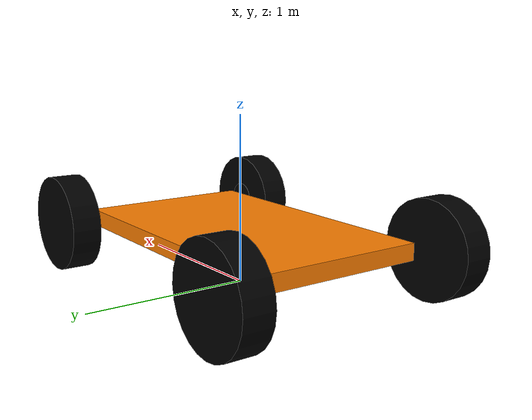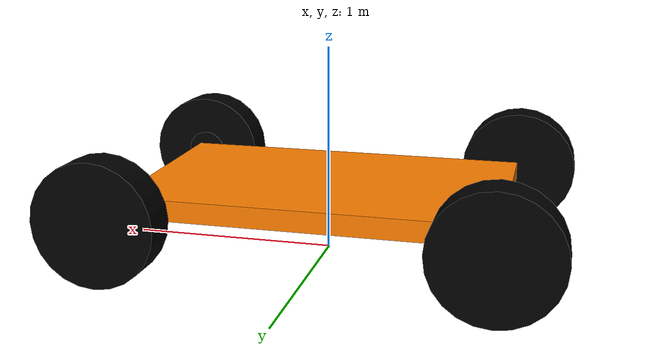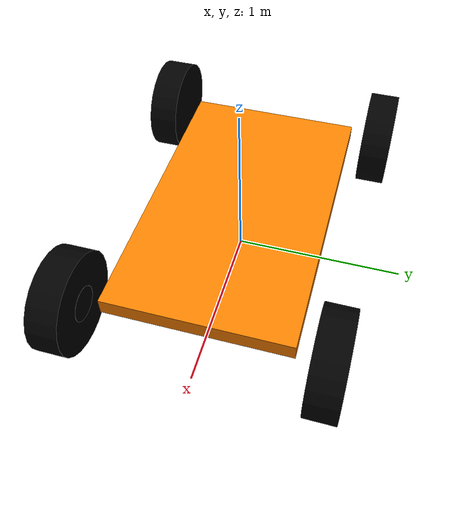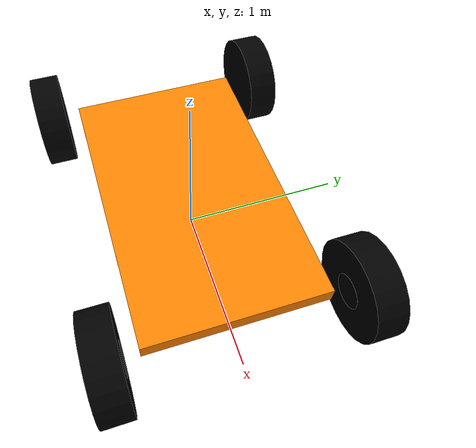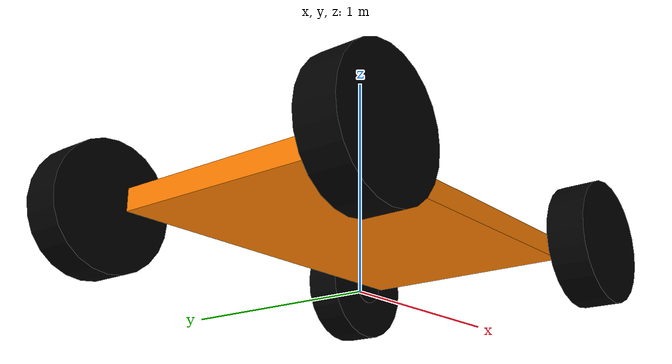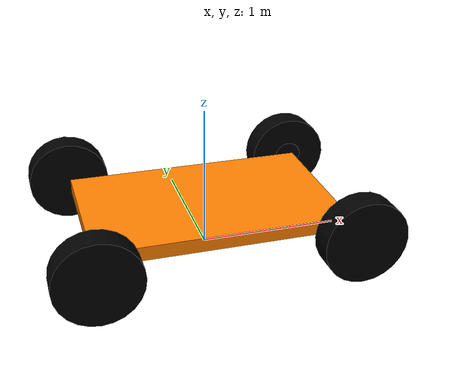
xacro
<?xml version="1.0"?>
<robot name="ackermann_vehicle"
    xmlns:xacro="http://www.ros.org/wiki/xacro">

    <!-- Materials -->
    <material name="black">
        <color rgba="0.0 0.0 0.0 1.0"/>
    </material>
    <material name="orange">
        <color rgba="1.0 0.5 0.0 1.0"/>
    </material>
    <material name="blue">
        <color rgba="0.0 0.0 0.8 1.0"/>
    </material>

    <!-- Vehicle Dimensions -->
    <xacro:property name="wheel_base_length" value="1.753"/>
    <xacro:property name="wheel_base_width" value="1.245"/>
    <xacro:property name="wheel_diameter" value="0.584"/>
    <xacro:property name="wheel_thickness" value="0.178"/>

    <!-- Macros -->
    <xacro:macro name="wheel" params="name radius width material caster_offset mass">
        <link name="${name}">
            <collision>
                <origin xyz="0 0 0" rpy="0 1.5708 1.5708" />
                <geometry>
                    <cylinder length="${width}" radius="${radius}"/>
                </geometry>
            </collision>
            <visual>
                <origin xyz="0 0 0" rpy="0 1.5708 1.5708" />
                <geometry>
                    <cylinder length="${width}" radius="${radius}"/>
                </geometry>
                <material name="black"/>
            </visual>
            <inertial>
                <origin xyz="0 0 0" rpy="0 1.5708 1.5708" />
                <mass value="0.2"/>
                <xacro:cylinder_inertia m="${mass}" r="${radius}" h="${width}" />
            </inertial>
        </link>
        <gazebo reference="${name}">
            <mu1 value="2.0"/>
            <mu2 value="2.0"/>
            <kp value="10000000.0" />
            <kd value="1.0" />
            <fdir1 value="0 1 0"/>
            <material>${material}</material>
        </gazebo>
    </xacro:macro>

    <xacro:macro name="wheel_steer" params="lr lr_reflect">
        <xacro:wheel name="${lr}" radius="${wheel_diameter/2}" width="${wheel_thickness}" material="Gazebo/Blue" caster_offset="0" mass="6"/>
        <xacro:wheel name="${lr}_assembly" radius="0.1" width="0.001" material="Gazebo/White" caster_offset="-.5" mass="0.5" />

        <joint name="${lr}_hinge" type="revolute">
            <parent link="chassis"/>
            <child link="${lr}_assembly"/>
            <origin xyz="${wheel_base_length/2} ${lr_reflect*(wheel_base_width/2)} ${wheel_diameter/2}" rpy="0 0 0" />
            <axis xyz="0 0 1" rpy="0 0 0" />
            <limit effort="100" velocity="1" lower="-1" upper="1"/>
            <dynamics damping="0.0" friction="0.0"/>
        </joint>
        <joint name="${lr}_rotate" type="continuous">
            <parent link="${lr}_assembly"/>
            <child link="${lr}"/>
            <origin xyz="0.0 ${lr_reflect*(wheel_thickness/2)} 0.0" rpy="0 0 0" />
            <axis xyz="0 1 0" rpy="0 0 0" />
            <limit effort="100" velocity="50"/>
            <dynamics damping="0.0" friction="0.0"/>
        </joint>
    </xacro:macro>

    <xacro:macro name="rear_wheel" params="lr lr_reflect">
        <xacro:wheel name="${lr}" radius="${wheel_diameter/2}" width="${wheel_thickness}" material="Gazebo/Blue" caster_offset="0" mass="6" />

        <joint name="${lr}_rotate" type="continuous">
            <parent link="chassis"/>
            <child link="${lr}"/>
            <origin xyz="${-wheel_base_length/2} ${lr_reflect*((wheel_base_width/2)+(wheel_thickness/2))} ${wheel_diameter/2}" rpy="0 0 0" />
            <axis xyz="0 1 0" rpy="0 0 0" />
            <limit effort="0" velocity="0"/>
            <dynamics damping="0.0" friction="0.0"/>
        </joint>

    </xacro:macro>

    <xacro:macro name="box_inertia" params="x y z m">
        <inertia ixx="${m*(y*y+z*z)/12}" ixy = "0" ixz = "0" iyy="${m*(x*x+z*z)/12}" iyz = "0" izz="${m*(x*x+z*z)/12}" />
    </xacro:macro>
    <xacro:macro name="cylinder_inertia" params="m r h">
        <inertia ixx="${(m*((3*r*r)+(h*h)))/12}" ixy = "0" ixz = "0" iyy="${(m*((3*r*r)+(h*h)))/12}" iyz = "0" izz="${(m*r*r)/2}" />
    </xacro:macro>

    <!-- Macros End -->

    <!-- Base link -->
    <link name="base_link">
        <visual>
            <geometry>
                <box size="0.01 0.01 0.01"/>
            </geometry>
        </visual>
    </link>

    <!-- Chassis START-->
    <joint name="base_joint" type="fixed">
        <parent link="base_link"/>
        <child link="chassis"/>
    </joint>

    <link name="chassis">
        <collision>
            <origin xyz="0 0 ${wheel_diameter/2}" rpy="0 0 0"/>
            <geometry>
                <box size="${wheel_base_length} ${wheel_base_width-wheel_thickness} 0.1"/>
            </geometry>
        </collision>
        <visual>
            <origin xyz="0 0 0.3" rpy="0 0 0"/>
            <geometry>
                <box size="${wheel_base_length} ${wheel_base_width-wheel_thickness} 0.1"/>
            </geometry>
            <material name="orange"/>
        </visual>
        <inertial>
            <mass value="1"/>
            <origin xyz="0 0 0.3" rpy="0 0 0"/>
            <xacro:box_inertia x="${wheel_base_length}" y="${wheel_base_width-wheel_thickness}" z=".1" m="1" />
        </inertial>
    </link>
    <!-- Chassis END -->

    <xacro:wheel_steer lr="right_wheel" lr_reflect="-1" />
    <xacro:wheel_steer lr="left_wheel" lr_reflect="1" />
    <xacro:rear_wheel lr="right_wheel_rear" lr_reflect="-1" />
    <xacro:rear_wheel lr="left_wheel_rear" lr_reflect="1" />

    <gazebo>
        <plugin filename="libgz-sim-ackermann-steering-system.so" name="gz::sim::systems::AckermannSteering">
            <left_joint>left_wheel_rear_rotate</left_joint>
            <right_joint>right_wheel_rear_rotate</right_joint>
            <left_steering_joint>left_wheel_hinge</left_steering_joint>
            <right_steering_joint>right_wheel_hinge</right_steering_joint>
            <wheelbase>1.753</wheelbase>
            <track_width>1.245</track_width>
            <wheel_radius>0.292</wheel_radius>
            <min_velocity>-5.0</min_velocity>
            <max_velocity>5.0</max_velocity>
            <min_steering>-0.6</min_steering>
            <max_steering>0.6</max_steering>
            <topic>/cmd_vel</topic>
        </plugin>

        <plugin filename="libgz-sim-odometry-publisher-system.so" name="gz::sim::systems::OdometryPublisher">
            <odom_frame>odom</odom_frame>
            <robot_base_frame>base_link</robot_base_frame>
        </plugin>
        <plugin filename="libgz-sim-joint-state-publisher-system.so" name="gz::sim::systems::JointStatePublisher">
        </plugin>
    </gazebo>

</robot>
